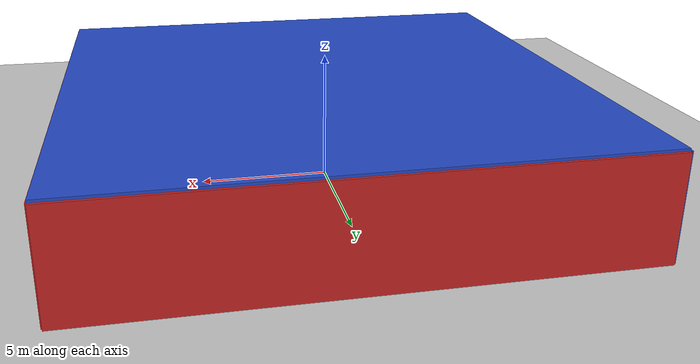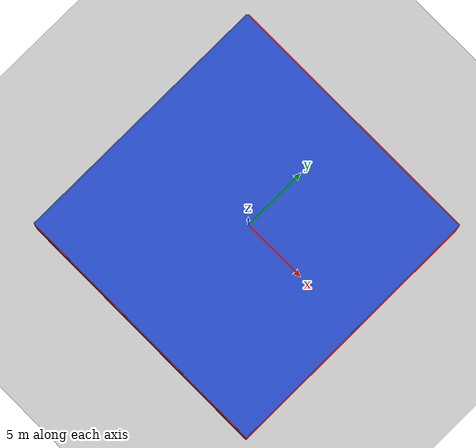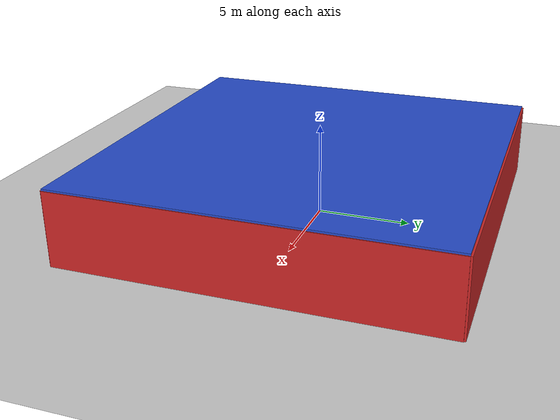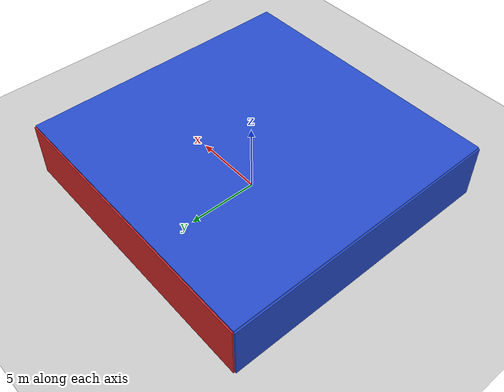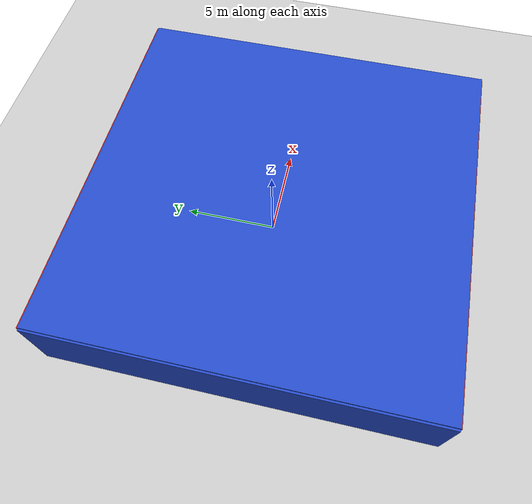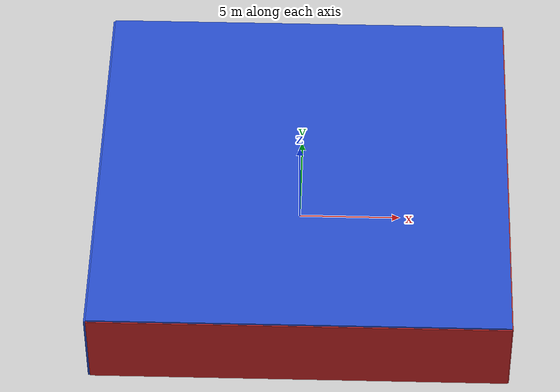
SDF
<sdf version="1.6">
 <world name="default">
  <light name="sun" type="directional">
   <pose>0 0 10 0 -0 0</pose>
   <diffuse>0.8 0.8 0.8 1</diffuse>
   <specular>0.2 0.2 0.2 1</specular>
   <attenuation>
    <range>1000</range>
    <constant>0.9</constant>
    <linear>0.01</linear>
    <quadratic>0.001</quadratic>
   </attenuation>
   <direction>-0.5 0.1 -0.9</direction>
  </light>
  <model name="ground_plane">
   <static>1</static>
   <link name="link">
    <collision name="collision">
     <geometry><plane><normal>0 0 1</normal><size>100 100</size></plane></geometry>
     <surface><friction><ode><mu>100</mu><mu2>50</mu2></ode></friction></surface>
    </collision>
    <visual name="visual">
     <cast_shadows>0</cast_shadows>
     <geometry><plane><normal>0 0 1</normal><size>100 100</size></plane></geometry>
     <material>
      <script><uri>file://media/materials/scripts/gazebo.material</uri><name>Gazebo/Grey</name></script>
     </material>
    </visual>
   </link>
  </model>
  <gravity>0 0 -9.8</gravity>
  <magnetic_field>6e-06 2.3e-05 -4.2e-05</magnetic_field>
  <atmosphere type="adiabatic"/>
  <physics default="0" name="default_physics" type="ode">
   <max_step_size>0.001</max_step_size>
   <real_time_factor>1</real_time_factor>
   <real_time_update_rate>1000</real_time_update_rate>
  </physics>
  <scene><ambient>0.4 0.4 0.4 1</ambient><background>0.7 0.7 0.7 1</background><shadows>1</shadows></scene>
  <spherical_coordinates>
   <surface_model>EARTH_WGS84</surface_model>
   <latitude_deg>0</latitude_deg>
   <longitude_deg>0</longitude_deg>
   <elevation>0</elevation>
   <heading_deg>0</heading_deg>
  </spherical_coordinates>
  <model name="four_walls">
   <static>1</static>
   <link name="Ceiling">
    <collision name="Ceiling_Collision"><geometry><box><size>20 20 0.1</size></box></geometry></collision>
    <visual name="Ceiling_Visual">
     <geometry><box><size>20 20 0.1</size></box></geometry>
     <material>
      <script><uri>file://media/materials/scripts/gazebo.material</uri><name>Gazebo/BlueLaser</name></script>
     </material>
    </visual>
    <pose>0 0 4.05 0 -0 0</pose>
   </link>
   <link name="Wall_South">
    <collision name="Wall_South_Collision">
     <geometry><box><size>20 0.1 4</size></box></geometry>
     <pose>0 0 2 0 -0 0</pose>
    </collision>
    <visual name="Wall_South_Visual">
     <pose>0 0 2 0 -0 0</pose>
     <geometry><box><size>20 0.1 4</size></box></geometry>
     <material>
      <script><uri>file://media/materials/scripts/gazebo.material</uri><name>Gazebo/RedBright</name></script>
     </material>
    </visual>
    <velocity_decay><linear>0</linear><angular>0</angular></velocity_decay>
    <pose>0 -10 0 0 -0 0</pose>
   </link>
   <link name="Wall_East">
    <collision name="Wall_21_Collision">
     <geometry><box><size>20 0.1 4</size></box></geometry>
     <pose>0 0 2 0 -0 0</pose>
    </collision>
    <visual name="Wall_21_Visual">
     <pose>0 0 2 0 -0 0</pose>
     <geometry><box><size>20 0.1 4</size></box></geometry>
     <material>
      <script><uri>file://media/materials/scripts/gazebo.material</uri><name>Gazebo/RedBright</name></script>
     </material>
    </visual>
    <velocity_decay><linear>0</linear><angular>0</angular></velocity_decay>
    <pose>10 0 0 0 -0 1.5708</pose>
   </link>
   <link name="Wall_North">
    <collision name="Wall_22_Collision">
     <geometry><box><size>20 0.2 4</size></box></geometry>
     <pose>0 0 2 0 -0 0</pose>
    </collision>
    <visual name="Wall_22_Visual">
     <pose>0 0 2 0 -0 0</pose>
     <geometry><box><size>20 0.2 4</size></box></geometry>
     <material>
      <script><uri>file://media/materials/scripts/gazebo.material</uri><name>Gazebo/RedGlow</name></script>
     </material>
    </visual>
    <velocity_decay><linear>0</linear><angular>0</angular></velocity_decay>
    <pose>0 10 0 0 -0 0</pose>
   </link>
   <link name="Wall_West">
    <collision name="Wall_23_Collision">
     <geometry><box><size>20 0.2 4</size></box></geometry>
     <pose>0 0 2 0 -0 0</pose>
    </collision>
    <visual name="Wall_23_Visual">
     <pose>0 0 2 0 -0 0</pose>
     <geometry><box><size>20 0.2 4</size></box></geometry>
     <material>
      <script><uri>file://media/materials/scripts/gazebo.material</uri><name>Gazebo/Blue</name></script>
     </material>
    </visual>
    <velocity_decay><linear>0</linear><angular>0</angular></velocity_decay>
    <pose>-10 0 0 0 0 -1.5708</pose>
   </link>
   <link name="Ground_link">
    <collision name="collision">
     <pose>0 0 0.05 0 -0 0</pose>
     <geometry><box><size>20 20 0.1</size></box></geometry>
    </collision>
    <visual name="visual">
     <pose>0 0 0.05 0 -0 0</pose>
     <geometry><box><size>20 20 0.1</size></box></geometry>
     <material>
      <script><uri>file://media/materials/scripts/gazebo.material</uri><name>Gazebo/ZincYellow</name></script>
     </material>
    </visual>
   </link>
   <pose>0.205996 -0.361878 0 0 -0 0</pose>
  </model>
  <include>
   <uri>model://textured_shapes_cylinder</uri>
   <pose>-6.85836895519 -3.86030812953 0 0 0 0.956461146654</pose>
  </include>
  <include>
   <uri>model://textured_shapes_sphere</uri>
   <pose>-7.15770538905 2.05146277512 0 0 0 3.13107802567</pose>
  </include>
  <include>
   <uri>model://textured_shapes_sphere</uri>
   <pose>-4.18096427276 2.09428096496 0 0 0 2.27192601967</pose>
  </include>
  <include>
   <uri>model://textured_shapes_cylinder</uri>
   <pose>2.03811816215 -6.9051721202 0 0 0 0.388659175141</pose>
  </include>
  <include><uri>model://bookshelf</uri><pose>2.09968593874 -4.04019031743 0 0 0 2.48639935895</pose></include>
  <include><uri>model://bookshelf</uri><pose>4.93938594215 7.87075384197 0 0 0 0.424884149874</pose></include>
  <include>
   <uri>model://textured_shapes_box</uri>
   <pose>7.90001546446 -4.04436229471 0 0 0 2.79237049837</pose>
  </include>
 </world>
</sdf>

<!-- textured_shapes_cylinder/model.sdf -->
<sdf version="1.6">
  <model name="textured_shapes">
    <pose>0 0 0.5 0 0 0</pose>
    <link name="cylinder">
      <pose>0 1.5 0 0 0 0</pose>
      <collision name="collision">
        <geometry>
          <cylinder>
            <radius>0.5</radius>
            <length>1</length>
          </cylinder>
        </geometry>
      </collision>
      <visual name="visual">
        <geometry>
          <cylinder>
            <radius>0.5</radius>
            <length>1</length>
          </cylinder>
        </geometry>
        <material>
          <script>
            <uri>model://textured_shapes/materials/scripts</uri>
            <uri>model://textured_shapes/materials/textures</uri>
            <name>TexturedShape/Squares</name>
          </script>
        </material>
      </visual>
    </link>
  </model>
</sdf>

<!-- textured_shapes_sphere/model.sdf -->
<sdf version="1.6">
  <model name="textured_shapes">
    <pose>0 0 0.5 0 0 0</pose>
    <link name="sphere">
      <collision name="collision">
        <geometry>
          <sphere>
            <radius>0.5</radius>
          </sphere>
        </geometry>
      </collision>
      <visual name="visual">
        <geometry>
          <sphere>
            <radius>0.5</radius>
          </sphere>
        </geometry>
        <material>
          <script>
            <uri>model://textured_shapes/materials/scripts</uri>
            <uri>model://textured_shapes/materials/textures</uri>
            <name>TexturedShape/Squares</name>
          </script>
        </material>
      </visual>
    </link>
  </model>
</sdf>

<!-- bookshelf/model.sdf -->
<sdf version="1.5">
  <model name="bookshelf">
    <static>true</static>
    <pose>0 0 0 0 0</pose>
    <link name="link">
      <pose>0 0 0 0 0 -1.57</pose>
      <inertial>
        <mass>1.0</mass>
      </inertial>
      <collision name="back">
        <pose>0 0.005 0.6 0 0 0</pose>
        <geometry>
          <box>
            <size>0.9 0.01 1.2</size>
          </box>
        </geometry>
      </collision>
      <visual name="visual1">
        <pose>0 0.005 0.6 0 0 0</pose>
        <geometry>
          <box>
            <size>0.9 0.01 1.2</size>
          </box>
        </geometry>
        <material>
          <script>
            <uri>file://media/materials/scripts/gazebo.material</uri>
            <name>Gazebo/Wood</name>
          </script>
        </material>
      </visual>
      <collision name="left_side">
        <pose>0.45 -0.195 0.6 0 0 0</pose>
        <geometry>
          <box>
            <size>0.02 0.4 1.2</size>
          </box>
        </geometry>
      </collision>
      <visual name="visual2">
        <pose>0.45 -0.195 0.6 0 0 0</pose>
        <geometry>
          <box>
            <size>0.02 0.4 1.2</size>
          </box>
        </geometry>
        <material>
          <script>
            <uri>file://media/materials/scripts/gazebo.material</uri>
            <name>Gazebo/Wood</name>
          </script>
        </material>
      </visual>
      <collision name="right_side">
        <pose>-0.45 -0.195 0.6 0 0 0</pose>
        <geometry>
          <box>
            <size>0.02 0.4 1.2</size>
          </box>
        </geometry>
      </collision>
      <visual name="visual3">
        <pose>-0.45 -0.195 0.6 0 0 0</pose>
        <geometry>
          <box>
            <size>0.02 0.4 1.2</size>
          </box>
        </geometry>
        <material>
          <script>
            <uri>file://media/materials/scripts/gazebo.material</uri>
            <name>Gazebo/Wood</name>
          </script>
        </material>
      </visual>
      <collision name="bottom">
        <pose>0 -0.195 0.03 0 0 0</pose>
        <geometry>
          <box>
            <size>0.88 0.4 0.06</size>
          </box>
        </geometry>
      </collision>
      <visual name="visual4">
        <pose>0 -0.195 0.03 0 0 0</pose>
        <geometry>
          <box>
            <size>0.88 0.4 0.06</size>
          </box>
        </geometry>
        <material>
          <script>
            <uri>file://media/materials/scripts/gazebo.material</uri>
            <name>Gazebo/Wood</name>
          </script>
        </material>
      </visual>
      <collision name="top">
        <pose>0 -0.195 1.19 0 0 0</pose>
        <geometry>
          <box>
            <size>0.88 0.4 0.02</size>
          </box>
        </geometry>
      </collision>
      <visual name="visual5">
        <pose>0 -0.195 1.19 0 0 0</pose>
        <geometry>
          <box>
            <size>0.88 0.4 0.02</size>
          </box>
        </geometry>
        <material>
          <script>
            <uri>file://media/materials/scripts/gazebo.material</uri>
            <name>Gazebo/Wood</name>
          </script>
        </material>
      </visual>
      <collision name="low_shelf">
        <pose>0 -0.195 0.43 0 0 0</pose>
        <geometry>
          <box>
            <size>0.88 0.4 0.02</size>
          </box>
        </geometry>
      </collision>
      <visual name="visual6">
        <pose>0 -0.195 0.43 0 0 0</pose>
        <geometry>
          <box>
            <size>0.88 0.4 0.02</size>
          </box>
        </geometry>
        <material>
          <script>
            <uri>file://media/materials/scripts/gazebo.material</uri>
            <name>Gazebo/Wood</name>
          </script>
        </material>
      </visual>
      <collision name="high_shelf">
        <pose>0 -0.195 0.8 0 0 0</pose>
        <geometry>
          <box>
            <size>0.88 0.4 0.02</size>
          </box>
        </geometry>
      </collision>
      <visual name="visual7">
        <pose>0 -0.195 0.8 0 0 0</pose>
        <geometry>
          <box>
            <size>0.88 0.4 0.02</size>
          </box>
        </geometry>
        <material>
          <script>
            <uri>file://media/materials/scripts/gazebo.material</uri>
            <name>Gazebo/Wood</name>
          </script>
        </material>
      </visual>
    </link>
  </model>
</sdf>

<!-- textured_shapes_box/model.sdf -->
<sdf version="1.6">
  <model name="textured_shapes">
    <pose>0 0 0.5 0 0 0</pose>
    <link name="box">
      <pose>0 -1.5 0 0 0 0</pose>
      <collision name="collision">
        <geometry>
          <box>
            <size>1 1 1</size>
          </box>
        </geometry>
      </collision>
      <visual name="visual">
        <geometry>
          <box>
            <size>1 1 1</size>
          </box>
        </geometry>
        <material>
          <script>
            <uri>model://textured_shapes/materials/scripts</uri>
            <uri>model://textured_shapes/materials/textures</uri>
            <name>TexturedShape/Squares</name>
          </script>
        </material>
      </visual>
    </link>
  </model>
</sdf>
